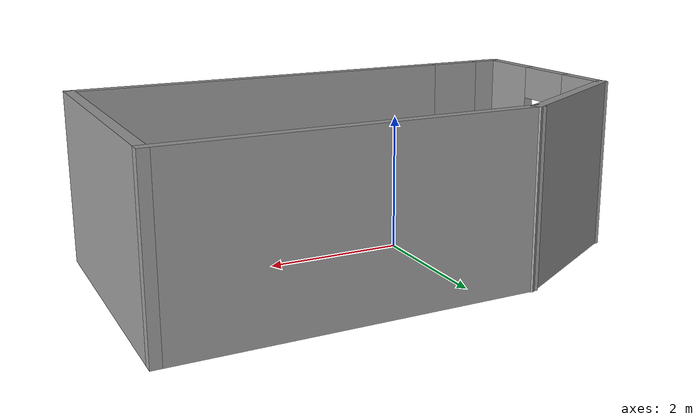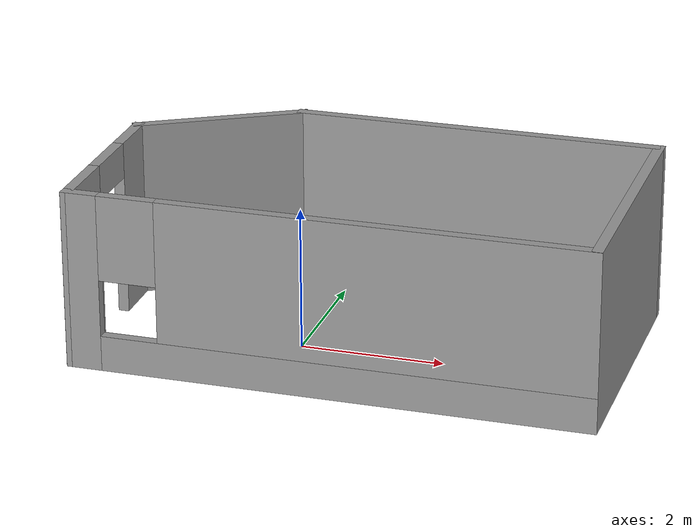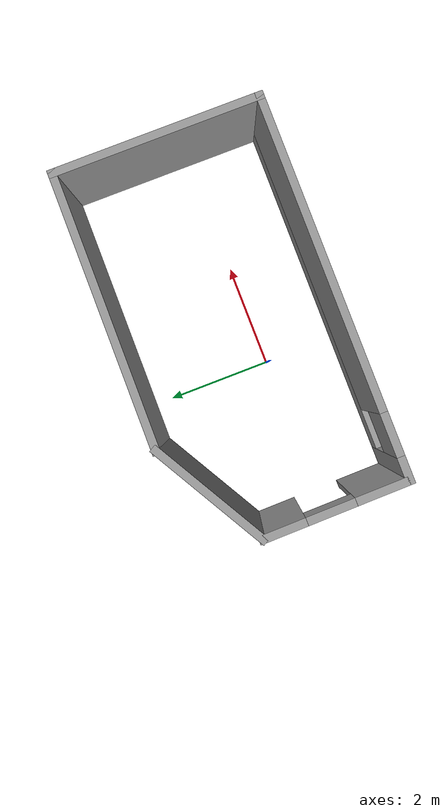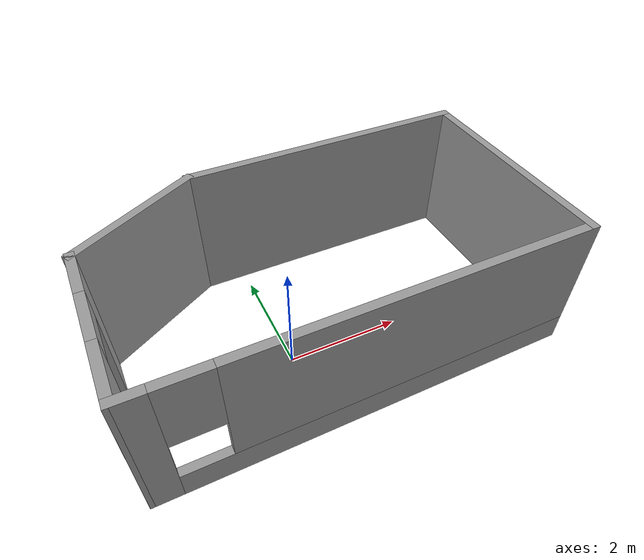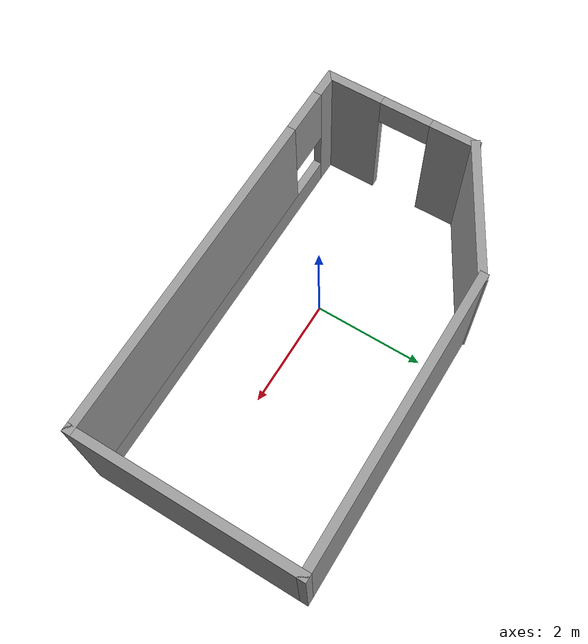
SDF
<?xml version='1.0'?>
<sdf version='1.7'>
  <model name='Untitled'>
    <pose>0.778694 0.498236 0 0 -0 0</pose>
    <link name='Wall_0'>
      <pose>0.031306 -1.93824 0 0 -0 0</pose>
      <visual name='Wall_0_Visual_0'>
        <pose>-3.3747 0 1.25 0 -0 0</pose>
        <geometry>
          <box>
            <size>0.500605 0.15 2.5</size>
          </box>
        </geometry>
        <material>
          <script>
            <uri>file://media/materials/scripts/gazebo.material</uri>
            <name>Gazebo/Grey</name>
          </script>
          <ambient>1 1 1 1</ambient>
        </material>
        <meta>
          <layer>0</layer>
        </meta>
      </visual>
      <collision name='Wall_0_Collision_0'>
        <geometry>
          <box>
            <size>0.500605 0.15 2.5</size>
          </box>
        </geometry>
        <pose>-3.3747 0 1.25 0 -0 0</pose>
      </collision>
      <visual name='Wall_0_Visual_1'>
        <pose>0.250303 0 0.25 0 -0 0</pose>
        <geometry>
          <box>
            <size>6.74939 0.15 0.5</size>
          </box>
        </geometry>
        <material>
          <script>
            <uri>file://media/materials/scripts/gazebo.material</uri>
            <name>Gazebo/Grey</name>
          </script>
          <ambient>1 1 1 1</ambient>
        </material>
        <meta>
          <layer>0</layer>
        </meta>
      </visual>
      <collision name='Wall_0_Collision_1'>
        <geometry>
          <box>
            <size>6.74939 0.15 0.5</size>
          </box>
        </geometry>
        <pose>0.250303 0 0.25 0 -0 0</pose>
      </collision>
      <visual name='Wall_0_Visual_2'>
        <pose>0.650303 0 1.5 0 -0 0</pose>
        <geometry>
          <box>
            <size>5.94939 0.15 2</size>
          </box>
        </geometry>
        <material>
          <script>
            <uri>file://media/materials/scripts/gazebo.material</uri>
            <name>Gazebo/Grey</name>
          </script>
          <ambient>1 1 1 1</ambient>
        </material>
        <meta>
          <layer>0</layer>
        </meta>
      </visual>
      <collision name='Wall_0_Collision_2'>
        <geometry>
          <box>
            <size>5.94939 0.15 2</size>
          </box>
        </geometry>
        <pose>0.650303 0 1.5 0 -0 0</pose>
      </collision>
      <visual name='Wall_0_Visual_3'>
        <pose>-2.72439 0 1.9 0 -0 0</pose>
        <geometry>
          <box>
            <size>0.8 0.15 1.2</size>
          </box>
        </geometry>
        <material>
          <script>
            <uri>file://media/materials/scripts/gazebo.material</uri>
            <name>Gazebo/Grey</name>
          </script>
          <ambient>1 1 1 1</ambient>
        </material>
        <meta>
          <layer>0</layer>
        </meta>
      </visual>
      <collision name='Wall_0_Collision_3'>
        <geometry>
          <box>
            <size>0.8 0.15 1.2</size>
          </box>
        </geometry>
        <pose>-2.72439 0 1.9 0 -0 0</pose>
      </collision>
    </link>
    <link name='Wall_1'>
      <collision name='Wall_1_Collision'>
        <geometry>
          <box>
            <size>4 0.15 2.5</size>
          </box>
        </geometry>
        <pose>0 0 1.25 0 -0 0</pose>
      </collision>
      <visual name='Wall_1_Visual'>
        <pose>0 0 1.25 0 -0 0</pose>
        <geometry>
          <box>
            <size>4 0.15 2.5</size>
          </box>
        </geometry>
        <material>
          <script>
            <uri>file://media/materials/scripts/gazebo.material</uri>
            <name>Gazebo/Grey</name>
          </script>
          <ambient>1 1 1 1</ambient>
        </material>
        <meta>
          <layer>0</layer>
        </meta>
      </visual>
      <pose>3.58131 -0.013236 0 0 -0 1.5708</pose>
    </link>
    <link name='Wall_2'>
      <collision name='Wall_2_Collision'>
        <geometry>
          <box>
            <size>5.25 0.15 2.5</size>
          </box>
        </geometry>
        <pose>0 0 1.25 0 -0 0</pose>
      </collision>
      <visual name='Wall_2_Visual'>
        <pose>0 0 1.25 0 -0 0</pose>
        <geometry>
          <box>
            <size>5.25 0.15 2.5</size>
          </box>
        </geometry>
        <material>
          <script>
            <uri>file://media/materials/scripts/gazebo.material</uri>
            <name>Gazebo/Grey</name>
          </script>
          <ambient>1 1 1 1</ambient>
        </material>
        <meta>
          <layer>0</layer>
        </meta>
      </visual>
      <pose>1.03131 1.91176 0 0 -0 3.14159</pose>
    </link>
    <link name='Wall_3'>
      <collision name='Wall_3_Collision'>
        <geometry>
          <box>
            <size>2.5 0.15 2.5</size>
          </box>
        </geometry>
        <pose>0 0 1.25 0 -0 0</pose>
      </collision>
      <visual name='Wall_3_Visual'>
        <pose>0 0 1.25 0 -0 0</pose>
        <geometry>
          <box>
            <size>2.5 0.15 2.5</size>
          </box>
        </geometry>
        <material>
          <script>
            <uri>file://media/materials/scripts/gazebo.material</uri>
            <name>Gazebo/Grey</name>
          </script>
          <ambient>1 1 1 1</ambient>
        </material>
        <meta>
          <layer>0</layer>
        </meta>
      </visual>
      <pose>-2.53627 1.32426 0 0 -0 -2.61799</pose>
    </link>
    <link name='Wall_4'>
      <pose>-3.53627 -0.600736 0 0 -0 -1.55765</pose>
      <visual name='Wall_4_Visual_0'>
        <pose>-0.977288 0 1.25 0 -0 0</pose>
        <geometry>
          <box>
            <size>0.870656 0.15 2.5</size>
          </box>
        </geometry>
        <material>
          <script>
            <uri>file://media/materials/scripts/gazebo.material</uri>
            <name>Gazebo/Grey</name>
          </script>
          <ambient>1 1 1 1</ambient>
        </material>
        <meta>
          <layer>0</layer>
        </meta>
      </visual>
      <collision name='Wall_4_Collision_0'>
        <geometry>
          <box>
            <size>0.870656 0.15 2.5</size>
          </box>
        </geometry>
        <pose>-0.977288 0 1.25 0 -0 0</pose>
      </collision>
      <visual name='Wall_4_Visual_1'>
        <pose>0.885328 0 1.25 0 -0 0</pose>
        <geometry>
          <box>
            <size>1.05458 0.15 2.5</size>
          </box>
        </geometry>
        <material>
          <script>
            <uri>file://media/materials/scripts/gazebo.material</uri>
            <name>Gazebo/Grey</name>
          </script>
          <ambient>1 1 1 1</ambient>
        </material>
        <meta>
          <layer>0</layer>
        </meta>
      </visual>
      <collision name='Wall_4_Collision_1'>
        <geometry>
          <box>
            <size>1.05458 0.15 2.5</size>
          </box>
        </geometry>
        <pose>0.885328 0 1.25 0 -0 0</pose>
      </collision>
      <visual name='Wall_4_Visual_2'>
        <pose>-0.09196 0 2.25 0 -0 0</pose>
        <geometry>
          <box>
            <size>0.9 0.15 0.5</size>
          </box>
        </geometry>
        <material>
          <script>
            <uri>file://media/materials/scripts/gazebo.material</uri>
            <name>Gazebo/Grey</name>
          </script>
          <ambient>1 1 1 1</ambient>
        </material>
        <meta>
          <layer>0</layer>
        </meta>
      </visual>
      <collision name='Wall_4_Collision_2'>
        <geometry>
          <box>
            <size>0.9 0.15 0.5</size>
          </box>
        </geometry>
        <pose>-0.09196 0 2.25 0 -0 0</pose>
      </collision>
    </link>
    <static>1</static>
  </model>
</sdf>
